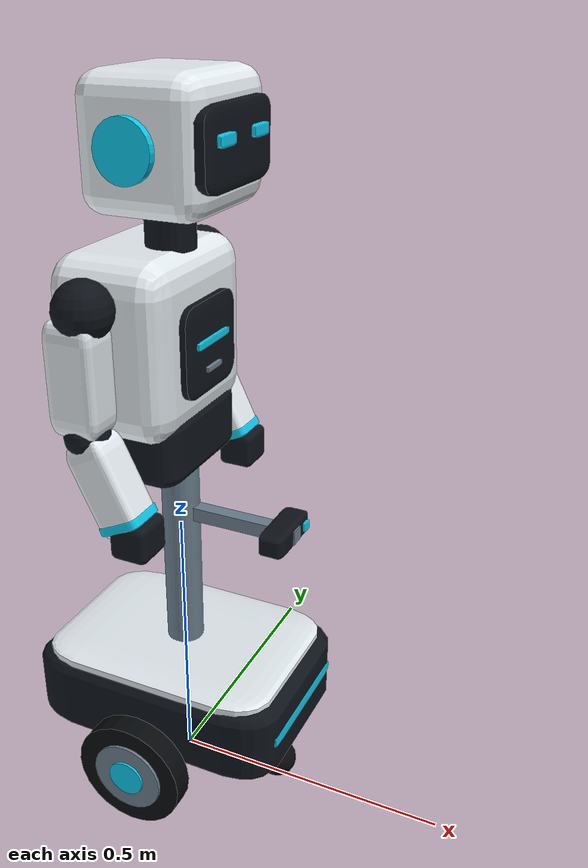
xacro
<?xml version="1.0"?>
<robot xmlns:xacro="http://www.ros.org/wiki/xacro" name="placecell_robot">
  <material name="ceramic"><color rgba="0.9 0.93 0.95 1"/></material>
  <material name="graphite"><color rgba="0.055 0.075 0.10 1"/></material>
  <material name="cyan"><color rgba="0.04 0.8 0.94 1"/></material>
  <material name="silver"><color rgba="0.42 0.50 0.56 1"/></material>
  <material name="rubber"><color rgba="0.025 0.035 0.045 1"/></material>
  <xacro:arg name="mesh_root" default="model://robot/meshes"/>
  <xacro:property name="shell_mesh" value="$(arg mesh_root)/rounded_box.dae"/>
  <xacro:macro name="shell" params="name xyz scale material rpy:='0 0 0'">
    <visual name="${name}"><origin xyz="${xyz}" rpy="${rpy}"/>
      <geometry><mesh filename="${shell_mesh}" scale="${scale}"/></geometry>
      <material name="${material}"/>
    </visual>
  </xacro:macro>
  <xacro:macro name="inertia" params="mass xx yy zz">
    <inertial>
      <mass value="${mass}"/>
      <inertia ixx="${xx}" ixy="0" ixz="0" iyy="${yy}" iyz="0" izz="${zz}"/>
    </inertial>
  </xacro:macro>
  <link name="base_footprint"/>
  <joint name="base_joint" type="fixed">
    <parent link="base_footprint"/><child link="base_link"/><origin xyz="0 0 0.18"/>
  </joint>
  <link name="base_link">
    <xacro:inertia mass="8" xx="0.11" yy="0.16" zz="0.23"/>
    <xacro:shell name="base_shell" xyz="0 0 0" scale="0.48 0.34 0.16" material="graphite"/>
    <xacro:shell name="base_deck" xyz="0 0 0.064" scale="0.44 0.32 0.045" material="ceramic"/>
    <xacro:shell name="front_light" xyz="0.237 0 0.005" scale="0.008 0.24 0.022" material="cyan"/>
    <collision><geometry><box size="0.48 0.34 0.16"/></geometry></collision>
  </link>
  <xacro:macro name="wheel" params="side y">
    <link name="${side}_wheel">
      <xacro:inertia mass="0.4" xx="0.0011" yy="0.002" zz="0.0011"/>
      <visual><origin rpy="${pi/2} 0 0"/><geometry><cylinder radius="0.1" length="0.04"/></geometry><material name="rubber"/></visual>
      <visual name="hub"><origin xyz="0 ${0.022 if y > 0 else -0.022} 0" rpy="${pi/2} 0 0"/><geometry><cylinder radius="0.065" length="0.006"/></geometry><material name="silver"/></visual>
      <visual name="hub_center"><origin xyz="0 ${0.026 if y > 0 else -0.026} 0" rpy="${pi/2} 0 0"/><geometry><cylinder radius="0.033" length="0.006"/></geometry><material name="cyan"/></visual>
      <collision><origin rpy="${pi/2} 0 0"/><geometry><cylinder radius="0.1" length="0.04"/></geometry></collision>
    </link>
    <joint name="${side}_wheel_joint" type="continuous">
      <parent link="base_link"/><child link="${side}_wheel"/><origin xyz="0 ${y} -0.08"/><axis xyz="0 1 0"/>
      <dynamics damping="0.01" friction="0.0"/>
    </joint>
    <gazebo reference="${side}_wheel"><mu1>1.0</mu1><mu2>1.0</mu2></gazebo>
  </xacro:macro>
  <xacro:wheel side="left" y="0.20"/>
  <xacro:wheel side="right" y="-0.20"/>
  <xacro:macro name="caster" params="name x">
    <link name="${name}">
      <xacro:inertia mass="0.1" xx="0.0001" yy="0.0001" zz="0.0001"/>
      <visual><geometry><sphere radius="0.035"/></geometry><material name="rubber"/></visual>
      <collision><geometry><sphere radius="0.035"/></geometry></collision>
    </link>
    <joint name="${name}_joint" type="fixed"><parent link="base_link"/><child link="${name}"/><origin xyz="${x} 0 -0.145"/></joint>
    <gazebo reference="${name}"><mu1>0.001</mu1><mu2>0.001</mu2></gazebo>
  </xacro:macro>
  <xacro:caster name="front_caster" x="0.19"/>
  <xacro:caster name="rear_caster" x="-0.19"/>
  <!-- The upper body is fixed; this robot navigates but does not manipulate objects. -->
  <joint name="humanoid_joint" type="fixed">
    <parent link="base_link"/><child link="humanoid_body"/><origin xyz="0 0 0.60"/>
  </joint>
  <link name="humanoid_body">
    <xacro:inertia mass="2.0" xx="0.12" yy="0.12" zz="0.025"/>
    <!-- All upper-body geometry fits the existing 0.48 x 0.46 m footprint. -->
    <collision><origin xyz="-0.025 0 -0.025"/><geometry><box size="0.30 0.45 0.98"/></geometry></collision>
    <!-- A narrow central column leaves the laser plane clear beyond its 8 cm near range. -->
    <visual name="column"><origin xyz="0 0 -0.31"/><geometry><cylinder radius="0.033" length="0.42"/></geometry><material name="silver"/></visual>
    <xacro:shell name="waist" xyz="-0.035 0 -0.10" scale="0.18 0.24 0.12" material="graphite"/>
    <xacro:shell name="torso" xyz="-0.045 0 0.065" scale="0.20 0.29 0.29" material="ceramic"/>
    <xacro:shell name="chest_screen" xyz="0.06 0 0.06" scale="0.016 0.16 0.15" material="graphite"/>
    <xacro:shell name="chest_indicator" xyz="0.07 0 0.07" scale="0.006 0.10 0.012" material="cyan"/>
    <xacro:shell name="chest_badge" xyz="0.07 0 0.025" scale="0.006 0.045 0.009" material="silver"/>
    <visual name="neck"><origin xyz="0 0 0.25"/><geometry><cylinder radius="0.04" length="0.09"/></geometry><material name="graphite"/></visual>
    <xacro:shell name="head" xyz="0.01 0 0.365" scale="0.20 0.24 0.20" material="ceramic"/>
    <xacro:shell name="visor" xyz="0.108 0 0.365" scale="0.028 0.207 0.12" material="graphite"/>
    <xacro:shell name="left_eye" xyz="0.125 0.053 0.378" scale="0.009 0.045 0.018" material="cyan"/>
    <xacro:shell name="right_eye" xyz="0.125 -0.053 0.378" scale="0.009 0.045 0.018" material="cyan"/>
    <xacro:macro name="arm" params="side sign">
      <visual name="${side}_shoulder"><origin xyz="-0.045 ${sign*0.178} 0.15"/><geometry><sphere radius="0.047"/></geometry><material name="graphite"/></visual>
      <xacro:shell name="${side}_upper_arm" xyz="-0.055 ${sign*0.184} 0.05" scale="0.085 0.070 0.18" material="ceramic"/>
      <visual name="${side}_elbow"><origin xyz="-0.050 ${sign*0.184} -0.045"/><geometry><sphere radius="0.037"/></geometry><material name="graphite"/></visual>
      <xacro:shell name="${side}_forearm" xyz="-0.014 ${sign*0.184} -0.12" rpy="0 -0.45 0" scale="0.074 0.070 0.16" material="ceramic"/>
      <xacro:shell name="${side}_hand" xyz="0.028 ${sign*0.184} -0.20" scale="0.065 0.072 0.065" material="graphite"/>
      <xacro:shell name="${side}_wrist_band" xyz="0.013 ${sign*0.184} -0.175" rpy="0 -0.45 0" scale="0.077 0.073 0.018" material="cyan"/>
      <visual name="${side}_ear"><origin xyz="0.005 ${sign*0.125} 0.365" rpy="${pi/2} 0 0"/><geometry><cylinder radius="0.046" length="0.016"/></geometry><material name="cyan"/></visual>
    </xacro:macro>
    <xacro:arm side="left" sign="1"/>
    <xacro:arm side="right" sign="-1"/>
  </link>
  <link name="camera_link">
    <xacro:shell name="depth_camera_housing" xyz="-0.025 0 0" scale="0.045 0.12 0.04" material="graphite"/>
    <visual name="camera_mount"><origin xyz="-0.11 0 0"/><geometry><box size="0.22 0.025 0.025"/></geometry><material name="silver"/></visual>
    <xacro:shell name="depth_camera_lens" xyz="0 0.037 0" scale="0.006 0.017 0.017" material="cyan"/>
  </link>
  <joint name="camera_joint" type="fixed"><parent link="base_link"/><child link="camera_link"/><origin xyz="0.22 0 0.35"/></joint>
  <link name="camera_optical_frame"/>
  <joint name="camera_optical_joint" type="fixed">
    <parent link="camera_link"/><child link="camera_optical_frame"/><origin rpy="${-pi/2} 0 ${-pi/2}"/>
  </joint>
  <link name="laser_frame"/>
  <joint name="laser_joint" type="fixed"><parent link="base_link"/><child link="laser_frame"/><origin xyz="0 0 0.2"/></joint>
  <gazebo reference="camera_link">
    <sensor name="rgbd_camera" type="rgbd_camera">
      <gz_frame_id>camera_optical_frame</gz_frame_id>
      <topic>/rgbd_camera</topic><always_on>true</always_on><update_rate>5</update_rate>
      <camera>
        <horizontal_fov>1.0471975512</horizontal_fov>
        <image><width>640</width><height>480</height><format>R8G8B8</format></image>
        <clip><near>0.1</near><far>8.0</far></clip>
        <depth_camera><clip><near>0.1</near><far>8.0</far></clip></depth_camera>
      </camera>
    </sensor>
  </gazebo>
  <gazebo reference="laser_frame">
    <sensor name="lidar" type="gpu_lidar">
      <gz_frame_id>laser_frame</gz_frame_id>
      <topic>/scan</topic><always_on>true</always_on><update_rate>10</update_rate>
      <lidar>
        <scan><horizontal><samples>360</samples><resolution>1</resolution><min_angle>${-pi}</min_angle><max_angle>${pi}</max_angle></horizontal></scan>
        <range><min>0.08</min><max>12</max><resolution>0.01</resolution></range>
      </lidar>
    </sensor>
  </gazebo>
  <gazebo>
    <plugin filename="gz-sim-diff-drive-system" name="gz::sim::systems::DiffDrive">
      <left_joint>left_wheel_joint</left_joint><right_joint>right_wheel_joint</right_joint>
      <wheel_separation>0.40</wheel_separation><wheel_radius>0.1</wheel_radius>
      <topic>/model/placecell_robot/cmd_vel</topic>
      <odom_topic>/model/placecell_robot/odometry</odom_topic>
      <tf_topic>/model/placecell_robot/tf</tf_topic>
      <frame_id>odom</frame_id><child_frame_id>base_footprint</child_frame_id>
      <odom_publish_frequency>30</odom_publish_frequency>
      <max_linear_velocity>0.35</max_linear_velocity><min_linear_velocity>-0.35</min_linear_velocity>
      <max_angular_velocity>0.8</max_angular_velocity><min_angular_velocity>-0.8</min_angular_velocity>
      <max_linear_acceleration>0.5</max_linear_acceleration><min_linear_acceleration>-0.5</min_linear_acceleration>
      <max_angular_acceleration>1.0</max_angular_acceleration><min_angular_acceleration>-1.0</min_angular_acceleration>
    </plugin>
    <plugin filename="gz-sim-joint-state-publisher-system" name="gz::sim::systems::JointStatePublisher">
      <topic>/model/placecell_robot/joint_state</topic>
      <joint_name>left_wheel_joint</joint_name><joint_name>right_wheel_joint</joint_name>
    </plugin>
  </gazebo>
</robot>
